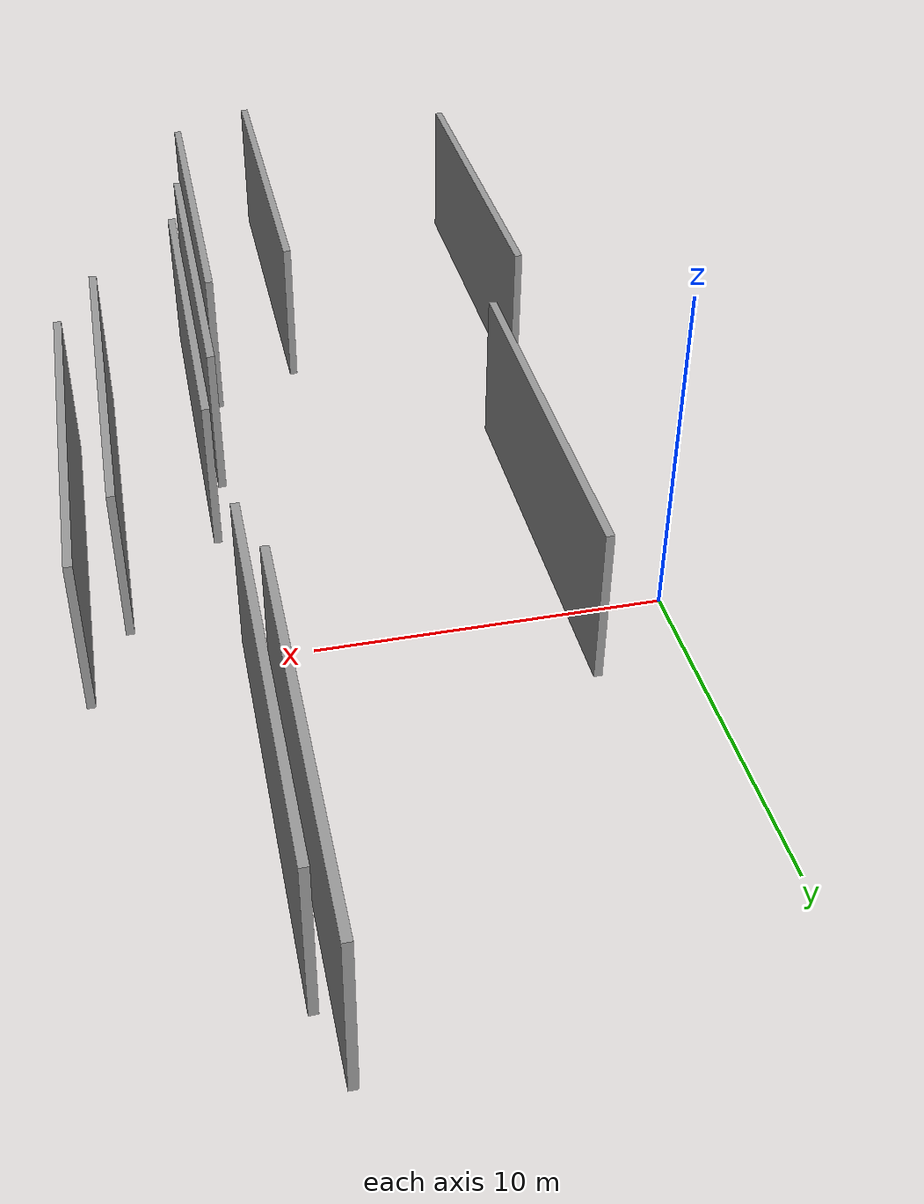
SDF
<sdf version="1.6">
 <world name="default">
  <scene>
   <sky><clouds><speed>12</speed></clouds></sky>
   <ambient>0.4 0.4 0.4 1</ambient>
   <background>0.7 0.7 0.7 1</background>
   <shadows>1</shadows>
  </scene>
  <gravity>0 0 -9.8066</gravity>
  <magnetic_field>6e-06 2.3e-05 -4.2e-05</magnetic_field>
  <physics default="0" name="default_physics" type="ode">
   <ode>
    <solver>
     <type>quick</type>
     <iters>10</iters>
     <sor>1.0</sor>
     <use_dynamic_moi_rescaling>0</use_dynamic_moi_rescaling>
    </solver>
    <constraints>
     <cfm>0</cfm>
     <erp>0.2</erp>
     <contact_max_correcting_vel>100</contact_max_correcting_vel>
     <contact_surface_layer>0.001</contact_surface_layer>
    </constraints>
   </ode>
   <max_step_size>0.004</max_step_size>
   <real_time_factor>1</real_time_factor>
   <real_time_update_rate>250</real_time_update_rate>
  </physics>
  <light name="sun" type="directional">
   <pose>0 0 10 0 0 0</pose>
   <diffuse>0.8 0.8 0.8 1</diffuse>
   <specular>0.2 0.2 0.2 1</specular>
   <attenuation>
    <range>1000</range>
    <constant>0.9</constant>
    <linear>0.01</linear>
    <quadratic>0.001</quadratic>
   </attenuation>
   <direction>-0.5 0.1 -0.9</direction>
  </light>
  <model name="grey_wall_1">
   <static>1</static>
   <pose>14.7064 -1.0820 5.0 0.000000 0.000000 1.570796</pose>
   <link name="link">
    <pose>0 0 2.00 0 0 0</pose>
    <collision name="collision"><geometry><box><size>10.00 0.2 4.00</size></box></geometry></collision>
    <visual name="visual">
     <cast_shadows>0</cast_shadows>
     <geometry><box><size>10.00 0.2 4.00</size></box></geometry>
     <material>
      <script>
       <uri>model://grey_wall/materials/scripts</uri>
       <uri>model://grey_wall/materials/textures</uri>
       <name>vrc/grey_wall</name>
      </script>
     </material>
    </visual>
   </link>
  </model>
  <model name="grey_wall_2">
   <static>1</static>
   <pose>12.1088 9.7061 5.0 0.000000 0.000000 1.570796</pose>
   <link name="link">
    <pose>0 0 2.00 0 0 0</pose>
    <collision name="collision"><geometry><box><size>10.00 0.2 4.00</size></box></geometry></collision>
    <visual name="visual">
     <cast_shadows>0</cast_shadows>
     <geometry><box><size>10.00 0.2 4.00</size></box></geometry>
     <material>
      <script>
       <uri>model://grey_wall/materials/scripts</uri>
       <uri>model://grey_wall/materials/textures</uri>
       <name>vrc/grey_wall</name>
      </script>
     </material>
    </visual>
   </link>
  </model>
  <model name="grey_wall_3">
   <static>1</static>
   <pose>4.5499 2.4919 5.0 0.000000 0.000000 1.570796</pose>
   <link name="link">
    <pose>0 0 2.00 0 0 0</pose>
    <collision name="collision"><geometry><box><size>10.00 0.2 4.00</size></box></geometry></collision>
    <visual name="visual">
     <cast_shadows>0</cast_shadows>
     <geometry><box><size>10.00 0.2 4.00</size></box></geometry>
     <material>
      <script>
       <uri>model://grey_wall/materials/scripts</uri>
       <uri>model://grey_wall/materials/textures</uri>
       <name>vrc/grey_wall</name>
      </script>
     </material>
    </visual>
   </link>
  </model>
  <model name="grey_wall_4">
   <static>1</static>
   <pose>3.2294 -9.8110 5.0 0.000000 0.000000 1.570796</pose>
   <link name="link">
    <pose>0 0 2.00 0 0 0</pose>
    <collision name="collision"><geometry><box><size>10.00 0.2 4.00</size></box></geometry></collision>
    <visual name="visual">
     <cast_shadows>0</cast_shadows>
     <geometry><box><size>10.00 0.2 4.00</size></box></geometry>
     <material>
      <script>
       <uri>model://grey_wall/materials/scripts</uri>
       <uri>model://grey_wall/materials/textures</uri>
       <name>vrc/grey_wall</name>
      </script>
     </material>
    </visual>
   </link>
  </model>
  <model name="grey_wall_5">
   <static>1</static>
   <pose>15.6794 1.1429 5.0 0.000000 0.000000 1.570796</pose>
   <link name="link">
    <pose>0 0 2.00 0 0 0</pose>
    <collision name="collision"><geometry><box><size>10.00 0.2 4.00</size></box></geometry></collision>
    <visual name="visual">
     <cast_shadows>0</cast_shadows>
     <geometry><box><size>10.00 0.2 4.00</size></box></geometry>
     <material>
      <script>
       <uri>model://grey_wall/materials/scripts</uri>
       <uri>model://grey_wall/materials/textures</uri>
       <name>vrc/grey_wall</name>
      </script>
     </material>
    </visual>
   </link>
  </model>
  <model name="grey_wall_6">
   <static>1</static>
   <pose>12.0189 -6.3390 5.0 0.000000 0.000000 1.570796</pose>
   <link name="link">
    <pose>0 0 2.00 0 0 0</pose>
    <collision name="collision"><geometry><box><size>10.00 0.2 4.00</size></box></geometry></collision>
    <visual name="visual">
     <cast_shadows>0</cast_shadows>
     <geometry><box><size>10.00 0.2 4.00</size></box></geometry>
     <material>
      <script>
       <uri>model://grey_wall/materials/scripts</uri>
       <uri>model://grey_wall/materials/textures</uri>
       <name>vrc/grey_wall</name>
      </script>
     </material>
    </visual>
   </link>
  </model>
  <model name="grey_wall_7">
   <static>1</static>
   <pose>11.6880 -10.1044 5.0 0.000000 0.000000 1.570796</pose>
   <link name="link">
    <pose>0 0 2.00 0 0 0</pose>
    <collision name="collision"><geometry><box><size>10.00 0.2 4.00</size></box></geometry></collision>
    <visual name="visual">
     <cast_shadows>0</cast_shadows>
     <geometry><box><size>10.00 0.2 4.00</size></box></geometry>
     <material>
      <script>
       <uri>model://grey_wall/materials/scripts</uri>
       <uri>model://grey_wall/materials/textures</uri>
       <name>vrc/grey_wall</name>
      </script>
     </material>
    </visual>
   </link>
  </model>
  <model name="grey_wall_8">
   <static>1</static>
   <pose>11.6649 11.2878 5.0 0.000000 0.000000 1.570796</pose>
   <link name="link">
    <pose>0 0 2.00 0 0 0</pose>
    <collision name="collision"><geometry><box><size>10.00 0.2 4.00</size></box></geometry></collision>
    <visual name="visual">
     <cast_shadows>0</cast_shadows>
     <geometry><box><size>10.00 0.2 4.00</size></box></geometry>
     <material>
      <script>
       <uri>model://grey_wall/materials/scripts</uri>
       <uri>model://grey_wall/materials/textures</uri>
       <name>vrc/grey_wall</name>
      </script>
     </material>
    </visual>
   </link>
  </model>
  <model name="grey_wall_9">
   <static>1</static>
   <pose>12.3687 -4.0365 5.0 0.000000 0.000000 1.570796</pose>
   <link name="link">
    <pose>0 0 2.00 0 0 0</pose>
    <collision name="collision"><geometry><box><size>10.00 0.2 4.00</size></box></geometry></collision>
    <visual name="visual">
     <cast_shadows>0</cast_shadows>
     <geometry><box><size>10.00 0.2 4.00</size></box></geometry>
     <material>
      <script>
       <uri>model://grey_wall/materials/scripts</uri>
       <uri>model://grey_wall/materials/textures</uri>
       <name>vrc/grey_wall</name>
      </script>
     </material>
    </visual>
   </link>
  </model>
  <model name="grey_wall_10">
   <static>1</static>
   <pose>9.4104 -11.4012 5.0 0.000000 0.000000 1.570796</pose>
   <link name="link">
    <pose>0 0 2.00 0 0 0</pose>
    <collision name="collision"><geometry><box><size>10.00 0.2 4.00</size></box></geometry></collision>
    <visual name="visual">
     <cast_shadows>0</cast_shadows>
     <geometry><box><size>10.00 0.2 4.00</size></box></geometry>
     <material>
      <script>
       <uri>model://grey_wall/materials/scripts</uri>
       <uri>model://grey_wall/materials/textures</uri>
       <name>vrc/grey_wall</name>
      </script>
     </material>
    </visual>
   </link>
  </model>
 </world>
</sdf>
